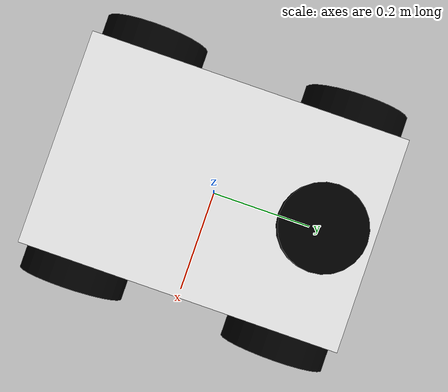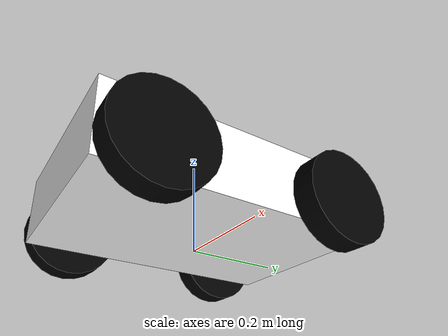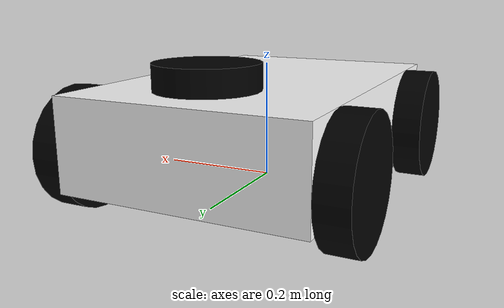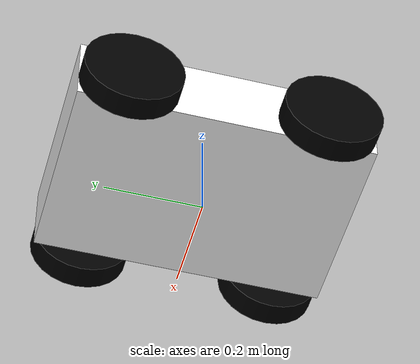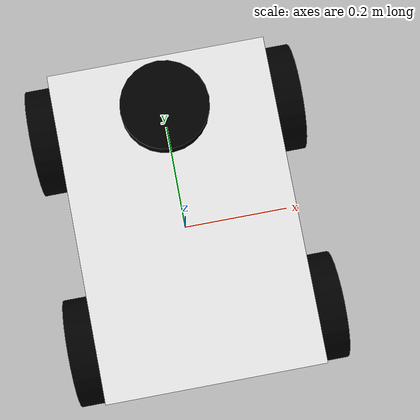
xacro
<?xml version="1.0"?>
<robot xmlns:xacro="http://www.ros.org/wiki/xacro" name="robot">

    <xacro:include filename="robot_core.xacro" />
    <xacro:include filename="lidar.xacro" />
    <xacro:include filename="$(find robot_desc)/model/robot.gazebo"/>

<gazebo>
    <plugin filename="gz-sim-sensors-system" name="gz::sim::systems::Sensors">
        <render_engine>ogre</render_engine>
        <headless_rendering>true</headless_rendering>        <!-- KEY LINE -->
    </plugin>
</gazebo>

</robot>

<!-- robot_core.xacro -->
<!-- 4 wheeled robot -->
<!-- Created by Justice John Owusu -->
<!-- Date 2026-03-18 -->

<robot name= "bob" xmlns:xacro="http://www.ros.org/wiki/xacro">

<!-- dimensions of the body -->
<xacro:property name= "bx_dim" value = "0.4"/>
<xacro:property name= "by_dim" value = "0.6"/>
<xacro:property name= "bz_dim" value = "0.15"/>

<!-- Wheel dimensions -->
<xacro:property name= "w_rad" value = "0.1"/>
<xacro:property name= "w_len" value = "0.05"/>
<xacro:property name= "w_z" value = "${2*w_rad-bz_dim/2}"/>

<!-- constants -->
<xacro:property name= "pi_const" value = "3.14159265358"/>

<!--Densities -->
<xacro:property name= "b_dens" value = "1"/>
<xacro:property name= "w_dens" value = "1"/>

<!-- Masses -->
<xacro:property name= "b_mass" value = "${b_dens* bx_dim * by_dim* bz_dim}"/>
<xacro:property name= "w_mass" value = "${w_dens* pi_const* w_rad* w_rad* w_len}"/>

<!-- wheel properties -->
<xacro:property name="I_wheel" value="${0.5 * w_mass * w_rad * w_rad}"/>
<xacro:property name= "effort" value = "1000"/>
<xacro:property name = "velocity" value = "1000"/>
<xacro:property name = "friction" value = "1.0"/>
<xacro:property name = "damping" value = "1.0"/>

<!-- Wheel inertia -->
<xacro:macro name="wheel_inertia">
<inertial>
<origin rpy= "0 0 0" xyz = "0 0 0"/>
<mass value = "${w_mass}"/>
<inertia ixx = "${I_wheel}" ixy = "0.0" ixz = "0.0" iyy = "${I_wheel}" iyz = "0.0" izz= "${I_wheel}"/>
</inertial>
</xacro:macro>

<!-- wheel -->
<xacro:macro name="wheel_def" params = "name">
<link name="${name}">
    <visual>
        <origin rpy = "0 ${pi_const/2} 0 " xyz="0 0 0"/>
        <geometry>
            <cylinder radius="${w_rad}" length="${w_len}"/>
        </geometry>
        <material name = "black">
            <color rgba = "0 0 0 1"/>
        </material>
    </visual>

    <collision>
        <geometry>
            <cylinder radius="${w_rad}" length="${w_len}"/>
        </geometry>
        <origin rpy="0  ${pi_const/2} 0" xyz="0 0 0"/>
    </collision>

    <xacro:wheel_inertia/>
</link>
</xacro:macro>
<!-- Beginning of the dummy link -->
<link name = "dummy">
</link>

<joint name = "dummy_joint" type = "fixed">
<parent link = "dummy"/>
<child link = "body"/>
<origin rpy= "0 0 0" xyz = "0 0 ${w_rad}"/>
</joint>

<!-- end of the dummy link -->

<!-- Beginning of the body link -->
<link name = "body">
<visual>
<origin rpy= "0 0 0" xyz = "0 0 0"/>
<geometry>
<box size = "${bx_dim} ${by_dim} ${bz_dim}"/>
</geometry>
<material name = "black">
    <color rgba = "1 1 1 1"/>
</material>
</visual>

<collision>
<geometry>
<box size = "${bx_dim} ${by_dim} ${bz_dim}"/>
</geometry>
<origin rpy= "0 0 0" xyz = "0 0 0"/>
</collision>

<inertial>
<origin rpy="0 0 0" xyz="0 0 0"/>
        <mass value="${b_mass}"/>
        <inertia ixx="${b_mass*(by_dim*by_dim + bz_dim*bz_dim)/12.0}"
        ixy="0.0" ixz="0.0" iyy="${(1.0/12.0)*b_mass*(bx_dim*bx_dim + bz_dim*bz_dim)}"
        iyz="0.0" izz="${(1.0/12.0)*b_mass*(bx_dim*bx_dim + by_dim*by_dim)}"/>
</inertial>

</link>

<!-- end of the body link -->

<!-- beginning of the wheel joints -->
<joint name = "wj_LF" type = "continuous">
<parent link = "body"/>
<child link = "LF_wheel"/>
<origin xyz="${-bx_dim/2 - w_len/2} ${-by_dim/2 + w_rad} ${bz_dim/2 - w_rad}" rpy="0 0 0"/>
    <axis xyz="1 0 0"/>
    <limit effort="${effort}" velocity="${velocity}"/>
    <dynamics damping="${damping}" friction="${friction}"/>
</joint>

<joint name = "wj_LB" type = "continuous">
<parent link = "body"/>
<child link = "LB_wheel"/>
<origin xyz="${-bx_dim/2 - w_len/2 } ${by_dim/2 - w_rad} ${bz_dim/2 - w_rad}" rpy="0 0 0"/>
    <axis xyz="1 0 0"/>
    <limit effort="${effort}" velocity="${velocity}"/>
    <dynamics damping="${damping}" friction="${friction}"/>
</joint>

<joint name = "wj_RF" type = "continuous">
<parent link = "body"/>
<child link = "RF_wheel"/>
<origin xyz="${bx_dim/2 + w_len/2} ${-by_dim/2 + w_rad} ${bz_dim/2 - w_rad}" rpy="0 0 0"/>
    <axis xyz="1 0 0"/>
    <limit effort="${effort}" velocity="${velocity}"/>
    <dynamics damping="${damping}" friction="${friction}"/>
</joint>

<joint name = "wj_RB" type = "continuous">
<parent link = "body"/>
<child link = "RB_wheel"/>
<origin xyz="${bx_dim/2 + w_len/2} ${by_dim/2 - w_rad} ${bz_dim/2 - w_rad}" rpy="0 0 0"/>
    <axis xyz="1 0 0"/>
    <limit effort="${effort}" velocity="${velocity}"/>
    <dynamics damping="${damping}" friction="${friction}"/>
</joint>

<!-- end of the wheel joints -->

<!-- Beginning of wheel links -->
<xacro:wheel_def name = "LF_wheel"/>
<xacro:wheel_def name = "LB_wheel"/>
<xacro:wheel_def name = "RF_wheel"/>
<xacro:wheel_def name = "RB_wheel"/>

<!-- end of wheel links -->

</robot>

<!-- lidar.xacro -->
<robot xmlns:xacro="http://www.ros.org/wiki/xacro">

<xacro:property name = "l_len" value = "0.04"/>
<xacro:property name = "l_rad" value = ".08"/>

    <joint name="laser_joint" type="fixed">
        <parent link="body"/>
        <child link="laser_frame"/>
        <origin xyz="0 ${by_dim/3} ${bz_dim/2 + 0.055/2}" rpy="0 0 0"/>
    </joint>

    <link name="laser_frame">
        <inertial>
            <origin xyz="0 0 0" rpy="0 0 0"/>
            <mass value="0.125"/>
            <inertia ixx="0.001" ixy="0" ixz="0" iyy="0.001" iyz="0" izz="0.001" />
        </inertial>

        <collision>
            <origin xyz="0 0 0" rpy="0 0 0"/>
            <geometry>
                <cylinder radius="${l_rad}" length="${l_len}"/>
            </geometry>
        </collision>

        <visual>
            <origin xyz="0 0 0" rpy="0 0 0"/>
            <geometry>
                <cylinder radius="${l_rad}" length="${l_len}"/>
            </geometry>
            <material name = "black">
                <color rgba = "0 0 0 1"/>
            </material>
        </visual>
    </link>

<gazebo reference="laser_frame">
    <sensor name="laser" type="gpu_lidar">
        <pose>0 0 0 0 0 0</pose>
        <visualize>true</visualize>
        <update_rate>10</update_rate>
        <lidar>
            <scan>
                <horizontal>
                    <samples>360</samples>
                    <resolution>1</resolution>
                    <min_angle>-3.14159</min_angle>
                    <max_angle>3.14159</max_angle>
                </horizontal>
            </scan>
            <range>
                <min>0.3</min>
                <max>12</max>
                <resolution>0.01</resolution>
            </range>
        </lidar>
        <topic>scan</topic>
        <gz_frame_id>laser_frame</gz_frame_id>
    </sensor>
</gazebo>

</robot>
